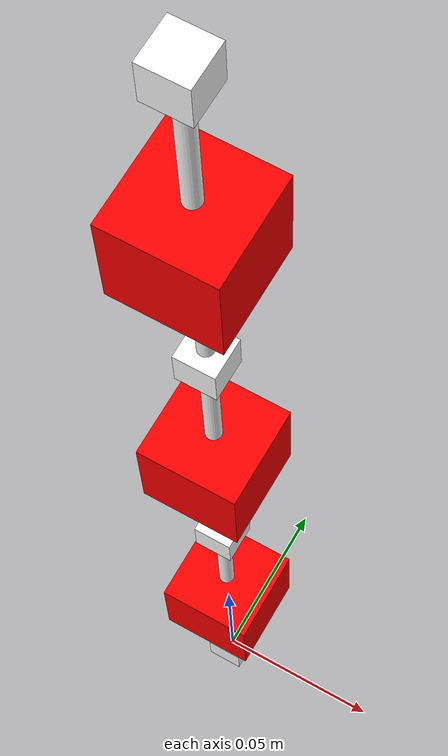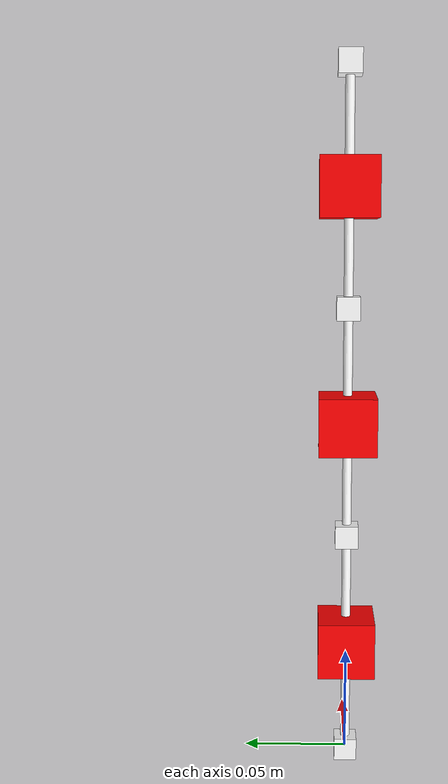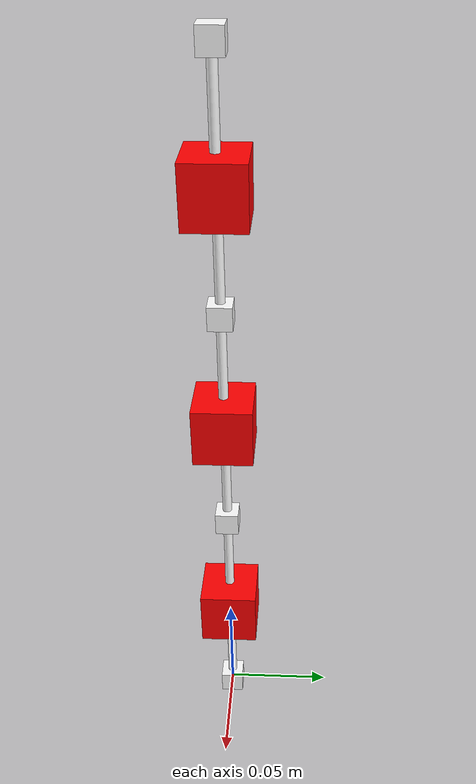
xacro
<?xml version='1.0'?>
<!-- This file has been generated automatically from create_xacro.cpp, do not edit by hand -->
<robot xmlns:xacro='http://www.ros.org/wiki/xacro' name='3segment_4chamber'>
<xacro:include filename='macro_definitions.urdf.xacro' />
<xacro:empty_link name='base_link'/>
<xacro:PCC id='0' parent='base_link' child='mid-0' length='0.11' mass='0.12'/>
<xacro:empty_link name='mid-0'/>
<xacro:PCC id='1' parent='mid-0' child='mid-1' length='0.11' mass='0.12'/>
<xacro:empty_link name='mid-1'/>
<xacro:PCC id='2' parent='mid-1' child='mid-2' length='0.11' mass='0.12'/>
<xacro:empty_link name='mid-2'/>
</robot>

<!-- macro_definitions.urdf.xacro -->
<!--
this file defines the xacro macros that can be used to create PCC augmented models
-->

<robot xmlns:xacro="http://www.ros.org/wiki/xacro" name="robot">
  <material name="white">
    <color rgba="1 1 1 1"/>
  </material>
  <material name="red">
    <color rgba="1 0 0 1"/>
  </material>
  <xacro:property name="PI" value="3.1415" />
  <xacro:macro name="ball-joint" params="id parent child">
    <!--creates a ball joint, called from the PCC macro..-->
    <joint name="${id}-ball-joint_x_joint" type="revolute">
      <parent link="${parent}"/>
      <child link="${id}-ball-joint_link_0"/>
      <axis xyz="1 0 0"/>
      <limit lower="${-PI/4}" upper="${PI/4}" effort="1000" velocity="1000"/>
    </joint>
    <link name="${id}-ball-joint_link_0">
      <xacro:default_inertial/>
    </link>
    <joint name="${id}-ball-joint_y_joint" type="revolute">
      <parent link="${id}-ball-joint_link_0"/>
      <child link="${id}-ball-joint_link_1"/>
      <axis xyz="0 1 0"/>
      <limit lower="${-PI/4}" upper="${PI/4}" effort="1000" velocity="1000"/>
    </joint>
    <link name="${id}-ball-joint_link_1">
      <xacro:default_inertial/>
      <visual>
        <geometry>
          <box size="${length/10} ${length/10} ${length/10}"/>
        </geometry>
        <material name="white"/>
      </visual>
    </link>
    <joint name="${id}-ball-joint_z_joint" type="revolute">
      <parent link="${id}-ball-joint_link_1"/>
      <child link="${child}"/>
      <axis xyz="0 0 1"/>
      <limit lower="${-PI/4}" upper="${PI/4}" effort="1000" velocity="1000"/>
    </joint>
  </xacro:macro>

  <xacro:macro name="rod" params="length direction=1">
    <!--creates a visual of a rod.-->
    <visual>
      <geometry>
        <cylinder radius="${length/50}" length="${length/2}"/>
      </geometry>
      <material name="white"/>
      <origin xyz="0 0 ${direction*length/4}"/>
    </visual>
  </xacro:macro>

  <xacro:macro name="default_inertial">
    <!--since the RBDL needs a inertial info for each link, just assign a really small value to links where we don't have to consider inertia.-->
    <inertial>
      <mass value="0.00001"/>
      <inertia ixx="0.00001" ixy="0.0000" ixz="0.0000" iyy="0.00001" iyz="0.0000" izz="0.00001"/>
    </inertial>
  </xacro:macro>

  <xacro:macro name="PCC" params="id parent child length mass">
    <!--creates a PCC piece-->
    <xacro:ball-joint id="${id}-base" parent="${parent}" child="${id}-a"/>
    <link name="${id}-a">
      <xacro:default_inertial/>
      <xacro:rod length="${length}"/>
    </link>
    <joint name="${id}-a-b_joint" type="prismatic">
      <parent link="${id}-a"/>
      <child link="${id}-b"/>
      <axis xyz="0 0 -1"/>
      <origin xyz="0 0 ${length/2}"/>
      <limit lower="0" upper="${length/2}" effort="1000" velocity="1000"/>
    </joint>
    <link name="${id}-b">
      <visual>
        <geometry>
          <box size="${length/4} ${length/4} ${length/4}"/>
        </geometry>
        <material name="red"/>
      </visual>
      <inertial>
        <mass value="${mass}"/>
        <inertia ixx="0.0001" ixy="0.000" ixz="0.000" iyy="0.0001" iyz="0.000" izz="0.0001"/>
      </inertial>
    </link>
    <xacro:ball-joint id="${id}-middle" parent="${id}-b" child="${id}-c"/>
    <link name="${id}-c">
      <xacro:default_inertial/>
    </link>
    <joint name="${id}-c-d_joint" type="prismatic">
      <parent link="${id}-c"/>
      <child link="${id}-d"/>
      <axis xyz="0 0 -1"/>
      <origin xyz="0 0 ${length/2}"/>
      <limit lower="0" upper="${length/2}" effort="1000" velocity="1000"/>
    </joint>
    <link name="${id}-d">
      <xacro:default_inertial/>
      <xacro:rod length="${length}" direction="-1"/>
    </link>

    <xacro:ball-joint id="${id}-tip" parent="${id}-d" child="${child}"/>
  </xacro:macro>

  <xacro:macro name="empty_link" params="name">
    <link name="${name}">
      <xacro:default_inertial/>
    </link>
  </xacro:macro>
</robot>
